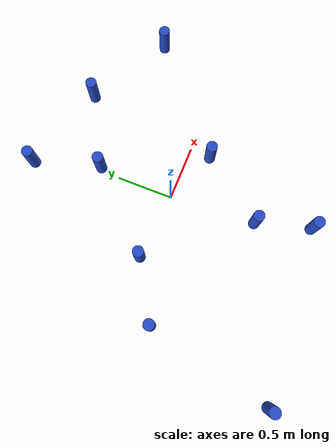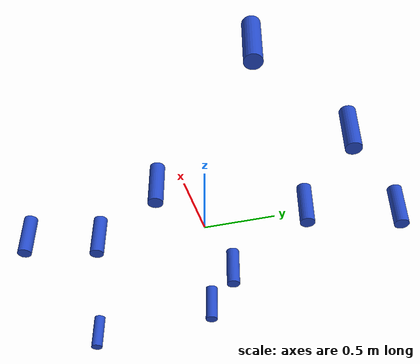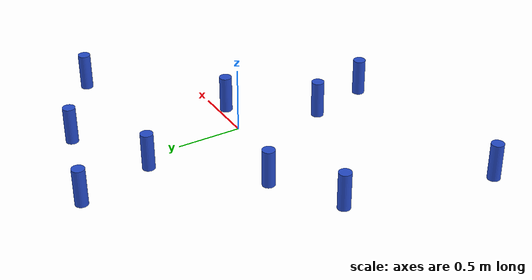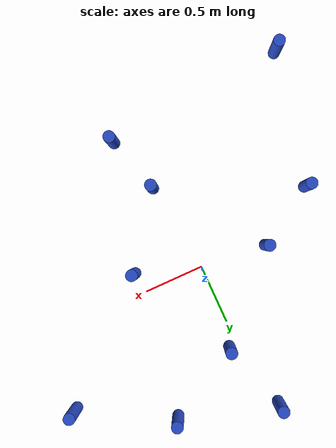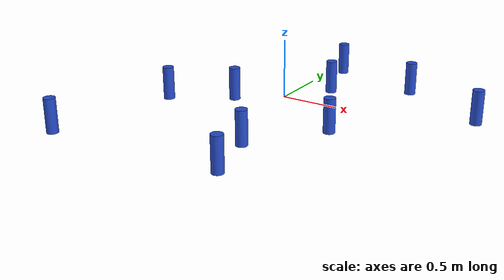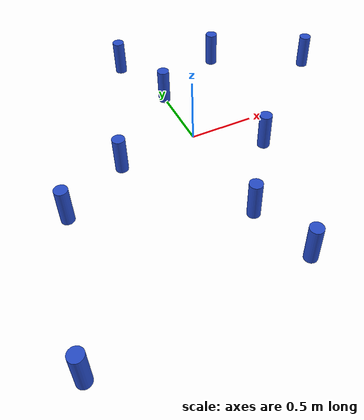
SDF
<?xml version='1.0'?>
<sdf version='1.6'>
  <model name='qmp_maze_model'>
    <link name='link_1'>
      <inertial>
        <mass>0.5</mass>
        <inertia>
          <ixx>0.0040625</ixx>
          <ixy>0</ixy>
          <ixz>0</ixz>
          <iyy>0.0040625</iyy>
          <iyz>0</iyz>
          <izz>0.000625</izz>
        </inertia>
        <pose frame=''>0 0 0 0 -0 0</pose>
      </inertial>
      <pose frame=''>-0.574701 0.06848 0 0 -0 0</pose>
      <gravity>1</gravity>
      <self_collide>0</self_collide>
      <kinematic>0</kinematic>
      <enable_wind>0</enable_wind>
      <visual name='visual'>
        <pose frame=''>0 0 0 0 -0 0</pose>
        <geometry>
          <cylinder>
            <radius>0.05</radius>
            <length>0.3</length>
          </cylinder>
        </geometry>
        <material>
          <lighting>1</lighting>
          <script>
            <uri>file://media/materials/scripts/gazebo.material</uri>
            <name>Gazebo/Blue</name>
          </script>
          <shader type='vertex'>
            <normal_map>__default__</normal_map>
          </shader>
          <ambient>0.3 0.3 0.3 1</ambient>
          <diffuse>0.7 0.7 0.7 1</diffuse>
          <specular>0.01 0.01 0.01 1</specular>
          <emissive>0 0 0 1</emissive>
        </material>
        <transparency>0</transparency>
        <cast_shadows>1</cast_shadows>
      </visual>
      <collision name='collision'>
        <laser_retro>0</laser_retro>
        <max_contacts>10</max_contacts>
        <pose frame=''>0 0 0 0 -0 0</pose>
        <geometry>
          <cylinder>
            <radius>0.05</radius>
            <length>0.3</length>
          </cylinder>
        </geometry>
        <surface>
          <friction>
            <ode>
              <mu>1</mu>
              <mu2>1</mu2>
              <fdir1>0 0 0</fdir1>
              <slip1>0</slip1>
              <slip2>0</slip2>
            </ode>
            <torsional>
              <coefficient>1</coefficient>
              <patch_radius>0</patch_radius>
              <surface_radius>0</surface_radius>
              <use_patch_radius>1</use_patch_radius>
              <ode>
                <slip>0</slip>
              </ode>
            </torsional>
          </friction>
          <bounce>
            <restitution_coefficient>0</restitution_coefficient>
            <threshold>1e+06</threshold>
          </bounce>
          <contact>
            <collide_without_contact>0</collide_without_contact>
            <collide_without_contact_bitmask>1</collide_without_contact_bitmask>
            <collide_bitmask>1</collide_bitmask>
            <ode>
              <soft_cfm>0</soft_cfm>
              <soft_erp>0.2</soft_erp>
              <kp>1e+13</kp>
              <kd>1</kd>
              <max_vel>0.01</max_vel>
              <min_depth>0</min_depth>
            </ode>
            <bullet>
              <split_impulse>1</split_impulse>
              <split_impulse_penetration_threshold>-0.01</split_impulse_penetration_threshold>
              <soft_cfm>0</soft_cfm>
              <soft_erp>0.2</soft_erp>
              <kp>1e+13</kp>
              <kd>1</kd>
            </bullet>
          </contact>
        </surface>
      </collision>
    </link>
    <link name='link_1_clone'>
      <inertial>
        <mass>0.5</mass>
        <inertia>
          <ixx>0.0040625</ixx>
          <ixy>0</ixy>
          <ixz>0</ixz>
          <iyy>0.0040625</iyy>
          <iyz>0</iyz>
          <izz>0.000625</izz>
        </inertia>
        <pose frame=''>0 0 0 0 -0 0</pose>
      </inertial>
      <pose frame=''>-0.111304 1.32966 0 0 -0 0</pose>
      <gravity>1</gravity>
      <self_collide>0</self_collide>
      <kinematic>0</kinematic>
      <enable_wind>0</enable_wind>
      <visual name='visual'>
        <pose frame=''>0 0 0 0 -0 0</pose>
        <geometry>
          <cylinder>
            <radius>0.05</radius>
            <length>0.3</length>
          </cylinder>
        </geometry>
        <material>
          <lighting>1</lighting>
          <script>
            <uri>file://media/materials/scripts/gazebo.material</uri>
            <name>Gazebo/Blue</name>
          </script>
          <shader type='vertex'>
            <normal_map>__default__</normal_map>
          </shader>
          <ambient>0.3 0.3 0.3 1</ambient>
          <diffuse>0.7 0.7 0.7 1</diffuse>
          <specular>0.01 0.01 0.01 1</specular>
          <emissive>0 0 0 1</emissive>
        </material>
        <transparency>0</transparency>
        <cast_shadows>1</cast_shadows>
      </visual>
      <collision name='collision'>
        <laser_retro>0</laser_retro>
        <max_contacts>10</max_contacts>
        <pose frame=''>0 0 0 0 -0 0</pose>
        <geometry>
          <cylinder>
            <radius>0.05</radius>
            <length>0.3</length>
          </cylinder>
        </geometry>
        <surface>
          <friction>
            <ode>
              <mu>1</mu>
              <mu2>1</mu2>
              <fdir1>0 0 0</fdir1>
              <slip1>0</slip1>
              <slip2>0</slip2>
            </ode>
            <torsional>
              <coefficient>1</coefficient>
              <patch_radius>0</patch_radius>
              <surface_radius>0</surface_radius>
              <use_patch_radius>1</use_patch_radius>
              <ode>
                <slip>0</slip>
              </ode>
            </torsional>
          </friction>
          <bounce>
            <restitution_coefficient>0</restitution_coefficient>
            <threshold>1e+06</threshold>
          </bounce>
          <contact>
            <collide_without_contact>0</collide_without_contact>
            <collide_without_contact_bitmask>1</collide_without_contact_bitmask>
            <collide_bitmask>1</collide_bitmask>
            <ode>
              <soft_cfm>0</soft_cfm>
              <soft_erp>0.2</soft_erp>
              <kp>1e+13</kp>
              <kd>1</kd>
              <max_vel>0.01</max_vel>
              <min_depth>0</min_depth>
            </ode>
            <bullet>
              <split_impulse>1</split_impulse>
              <split_impulse_penetration_threshold>-0.01</split_impulse_penetration_threshold>
              <soft_cfm>0</soft_cfm>
              <soft_erp>0.2</soft_erp>
              <kp>1e+13</kp>
              <kd>1</kd>
            </bullet>
          </contact>
        </surface>
      </collision>
    </link>
    <link name='link_1_clone_0'>
      <inertial>
        <mass>0.5</mass>
        <inertia>
          <ixx>0.0040625</ixx>
          <ixy>0</ixy>
          <ixz>0</ixz>
          <iyy>0.0040625</iyy>
          <iyz>0</iyz>
          <izz>0.000625</izz>
        </inertia>
        <pose frame=''>0 0 0 0 -0 0</pose>
      </inertial>
      <pose frame=''>0.069563 0.727162 0 0 -0 0</pose>
      <gravity>1</gravity>
      <self_collide>0</self_collide>
      <kinematic>0</kinematic>
      <enable_wind>0</enable_wind>
      <visual name='visual'>
        <pose frame=''>0 0 0 0 -0 0</pose>
        <geometry>
          <cylinder>
            <radius>0.05</radius>
            <length>0.3</length>
          </cylinder>
        </geometry>
        <material>
          <lighting>1</lighting>
          <script>
            <uri>file://media/materials/scripts/gazebo.material</uri>
            <name>Gazebo/Blue</name>
          </script>
          <shader type='vertex'>
            <normal_map>__default__</normal_map>
          </shader>
          <ambient>0.3 0.3 0.3 1</ambient>
          <diffuse>0.7 0.7 0.7 1</diffuse>
          <specular>0.01 0.01 0.01 1</specular>
          <emissive>0 0 0 1</emissive>
        </material>
        <transparency>0</transparency>
        <cast_shadows>1</cast_shadows>
      </visual>
      <collision name='collision'>
        <laser_retro>0</laser_retro>
        <max_contacts>10</max_contacts>
        <pose frame=''>0 0 0 0 -0 0</pose>
        <geometry>
          <cylinder>
            <radius>0.05</radius>
            <length>0.3</length>
          </cylinder>
        </geometry>
        <surface>
          <friction>
            <ode>
              <mu>1</mu>
              <mu2>1</mu2>
              <fdir1>0 0 0</fdir1>
              <slip1>0</slip1>
              <slip2>0</slip2>
            </ode>
            <torsional>
              <coefficient>1</coefficient>
              <patch_radius>0</patch_radius>
              <surface_radius>0</surface_radius>
              <use_patch_radius>1</use_patch_radius>
              <ode>
                <slip>0</slip>
              </ode>
            </torsional>
          </friction>
          <bounce>
            <restitution_coefficient>0</restitution_coefficient>
            <threshold>1e+06</threshold>
          </bounce>
          <contact>
            <collide_without_contact>0</collide_without_contact>
            <collide_without_contact_bitmask>1</collide_without_contact_bitmask>
            <collide_bitmask>1</collide_bitmask>
            <ode>
              <soft_cfm>0</soft_cfm>
              <soft_erp>0.2</soft_erp>
              <kp>1e+13</kp>
              <kd>1</kd>
              <max_vel>0.01</max_vel>
              <min_depth>0</min_depth>
            </ode>
            <bullet>
              <split_impulse>1</split_impulse>
              <split_impulse_penetration_threshold>-0.01</split_impulse_penetration_threshold>
              <soft_cfm>0</soft_cfm>
              <soft_erp>0.2</soft_erp>
              <kp>1e+13</kp>
              <kd>1</kd>
            </bullet>
          </contact>
        </surface>
      </collision>
    </link>
    <link name='link_1_clone_1'>
      <inertial>
        <mass>0.5</mass>
        <inertia>
          <ixx>0.0040625</ixx>
          <ixy>0</ixy>
          <ixz>0</ixz>
          <iyy>0.0040625</iyy>
          <iyz>0</iyz>
          <izz>0.000625</izz>
        </inertia>
        <pose frame=''>0 0 0 0 -0 0</pose>
      </inertial>
      <pose frame=''>0.232469 -1.26919 0 0 -0 0</pose>
      <gravity>1</gravity>
      <self_collide>0</self_collide>
      <kinematic>0</kinematic>
      <enable_wind>0</enable_wind>
      <visual name='visual'>
        <pose frame=''>0 0 0 0 -0 0</pose>
        <geometry>
          <cylinder>
            <radius>0.05</radius>
            <length>0.3</length>
          </cylinder>
        </geometry>
        <material>
          <lighting>1</lighting>
          <script>
            <uri>file://media/materials/scripts/gazebo.material</uri>
            <name>Gazebo/Blue</name>
          </script>
          <shader type='vertex'>
            <normal_map>__default__</normal_map>
          </shader>
          <ambient>0.3 0.3 0.3 1</ambient>
          <diffuse>0.7 0.7 0.7 1</diffuse>
          <specular>0.01 0.01 0.01 1</specular>
          <emissive>0 0 0 1</emissive>
        </material>
        <transparency>0</transparency>
        <cast_shadows>1</cast_shadows>
      </visual>
      <collision name='collision'>
        <laser_retro>0</laser_retro>
        <max_contacts>10</max_contacts>
        <pose frame=''>0 0 0 0 -0 0</pose>
        <geometry>
          <cylinder>
            <radius>0.05</radius>
            <length>0.3</length>
          </cylinder>
        </geometry>
        <surface>
          <friction>
            <ode>
              <mu>1</mu>
              <mu2>1</mu2>
              <fdir1>0 0 0</fdir1>
              <slip1>0</slip1>
              <slip2>0</slip2>
            </ode>
            <torsional>
              <coefficient>1</coefficient>
              <patch_radius>0</patch_radius>
              <surface_radius>0</surface_radius>
              <use_patch_radius>1</use_patch_radius>
              <ode>
                <slip>0</slip>
              </ode>
            </torsional>
          </friction>
          <bounce>
            <restitution_coefficient>0</restitution_coefficient>
            <threshold>1e+06</threshold>
          </bounce>
          <contact>
            <collide_without_contact>0</collide_without_contact>
            <collide_without_contact_bitmask>1</collide_without_contact_bitmask>
            <collide_bitmask>1</collide_bitmask>
            <ode>
              <soft_cfm>0</soft_cfm>
              <soft_erp>0.2</soft_erp>
              <kp>1e+13</kp>
              <kd>1</kd>
              <max_vel>0.01</max_vel>
              <min_depth>0</min_depth>
            </ode>
            <bullet>
              <split_impulse>1</split_impulse>
              <split_impulse_penetration_threshold>-0.01</split_impulse_penetration_threshold>
              <soft_cfm>0</soft_cfm>
              <soft_erp>0.2</soft_erp>
              <kp>1e+13</kp>
              <kd>1</kd>
            </bullet>
          </contact>
        </surface>
      </collision>
    </link>
    <link name='link_1_clone_2'>
      <inertial>
        <mass>0.5</mass>
        <inertia>
          <ixx>0.0040625</ixx>
          <ixy>0</ixy>
          <ixz>0</ixz>
          <iyy>0.0040625</iyy>
          <iyz>0</iyz>
          <izz>0.000625</izz>
        </inertia>
        <pose frame=''>0 0 0 0 -0 0</pose>
      </inertial>
      <pose frame=''>0.09288 -0.774524 0 0 -0 0</pose>
      <gravity>1</gravity>
      <self_collide>0</self_collide>
      <kinematic>0</kinematic>
      <enable_wind>0</enable_wind>
      <visual name='visual'>
        <pose frame=''>0 0 0 0 -0 0</pose>
        <geometry>
          <cylinder>
            <radius>0.05</radius>
            <length>0.3</length>
          </cylinder>
        </geometry>
        <material>
          <lighting>1</lighting>
          <script>
            <uri>file://media/materials/scripts/gazebo.material</uri>
            <name>Gazebo/Blue</name>
          </script>
          <shader type='vertex'>
            <normal_map>__default__</normal_map>
          </shader>
          <ambient>0.3 0.3 0.3 1</ambient>
          <diffuse>0.7 0.7 0.7 1</diffuse>
          <specular>0.01 0.01 0.01 1</specular>
          <emissive>0 0 0 1</emissive>
        </material>
        <transparency>0</transparency>
        <cast_shadows>1</cast_shadows>
      </visual>
      <collision name='collision'>
        <laser_retro>0</laser_retro>
        <max_contacts>10</max_contacts>
        <pose frame=''>0 0 0 0 -0 0</pose>
        <geometry>
          <cylinder>
            <radius>0.05</radius>
            <length>0.3</length>
          </cylinder>
        </geometry>
        <surface>
          <friction>
            <ode>
              <mu>1</mu>
              <mu2>1</mu2>
              <fdir1>0 0 0</fdir1>
              <slip1>0</slip1>
              <slip2>0</slip2>
            </ode>
            <torsional>
              <coefficient>1</coefficient>
              <patch_radius>0</patch_radius>
              <surface_radius>0</surface_radius>
              <use_patch_radius>1</use_patch_radius>
              <ode>
                <slip>0</slip>
              </ode>
            </torsional>
          </friction>
          <bounce>
            <restitution_coefficient>0</restitution_coefficient>
            <threshold>1e+06</threshold>
          </bounce>
          <contact>
            <collide_without_contact>0</collide_without_contact>
            <collide_without_contact_bitmask>1</collide_without_contact_bitmask>
            <collide_bitmask>1</collide_bitmask>
            <ode>
              <soft_cfm>0</soft_cfm>
              <soft_erp>0.2</soft_erp>
              <kp>1e+13</kp>
              <kd>1</kd>
              <max_vel>0.01</max_vel>
              <min_depth>0</min_depth>
            </ode>
            <bullet>
              <split_impulse>1</split_impulse>
              <split_impulse_penetration_threshold>-0.01</split_impulse_penetration_threshold>
              <soft_cfm>0</soft_cfm>
              <soft_erp>0.2</soft_erp>
              <kp>1e+13</kp>
              <kd>1</kd>
            </bullet>
          </contact>
        </surface>
      </collision>
    </link>
    <link name='link_1_clone_3'>
      <inertial>
        <mass>0.5</mass>
        <inertia>
          <ixx>0.0040625</ixx>
          <ixy>0</ixy>
          <ixz>0</ixz>
          <iyy>0.0040625</iyy>
          <iyz>0</iyz>
          <izz>0.000625</izz>
        </inertia>
        <pose frame=''>0 0 0 0 -0 0</pose>
      </inertial>
      <pose frame=''>0.536779 -0.178349 0 0 -0 0</pose>
      <gravity>1</gravity>
      <self_collide>0</self_collide>
      <kinematic>0</kinematic>
      <enable_wind>0</enable_wind>
      <visual name='visual'>
        <pose frame=''>0 0 0 0 -0 0</pose>
        <geometry>
          <cylinder>
            <radius>0.05</radius>
            <length>0.3</length>
          </cylinder>
        </geometry>
        <material>
          <lighting>1</lighting>
          <script>
            <uri>file://media/materials/scripts/gazebo.material</uri>
            <name>Gazebo/Blue</name>
          </script>
          <shader type='vertex'>
            <normal_map>__default__</normal_map>
          </shader>
          <ambient>0.3 0.3 0.3 1</ambient>
          <diffuse>0.7 0.7 0.7 1</diffuse>
          <specular>0.01 0.01 0.01 1</specular>
          <emissive>0 0 0 1</emissive>
        </material>
        <transparency>0</transparency>
        <cast_shadows>1</cast_shadows>
      </visual>
      <collision name='collision'>
        <laser_retro>0</laser_retro>
        <max_contacts>10</max_contacts>
        <pose frame=''>0 0 0 0 -0 0</pose>
        <geometry>
          <cylinder>
            <radius>0.05</radius>
            <length>0.3</length>
          </cylinder>
        </geometry>
        <surface>
          <friction>
            <ode>
              <mu>1</mu>
              <mu2>1</mu2>
              <fdir1>0 0 0</fdir1>
              <slip1>0</slip1>
              <slip2>0</slip2>
            </ode>
            <torsional>
              <coefficient>1</coefficient>
              <patch_radius>0</patch_radius>
              <surface_radius>0</surface_radius>
              <use_patch_radius>1</use_patch_radius>
              <ode>
                <slip>0</slip>
              </ode>
            </torsional>
          </friction>
          <bounce>
            <restitution_coefficient>0</restitution_coefficient>
            <threshold>1e+06</threshold>
          </bounce>
          <contact>
            <collide_without_contact>0</collide_without_contact>
            <collide_without_contact_bitmask>1</collide_without_contact_bitmask>
            <collide_bitmask>1</collide_bitmask>
            <ode>
              <soft_cfm>0</soft_cfm>
              <soft_erp>0.2</soft_erp>
              <kp>1e+13</kp>
              <kd>1</kd>
              <max_vel>0.01</max_vel>
              <min_depth>0</min_depth>
            </ode>
            <bullet>
              <split_impulse>1</split_impulse>
              <split_impulse_penetration_threshold>-0.01</split_impulse_penetration_threshold>
              <soft_cfm>0</soft_cfm>
              <soft_erp>0.2</soft_erp>
              <kp>1e+13</kp>
              <kd>1</kd>
            </bullet>
          </contact>
        </surface>
      </collision>
    </link>
    <link name='link_1_clone_4'>
      <inertial>
        <mass>0.5</mass>
        <inertia>
          <ixx>0.0040625</ixx>
          <ixy>0</ixy>
          <ixz>0</ixz>
          <iyy>0.0040625</iyy>
          <iyz>0</iyz>
          <izz>0.000625</izz>
        </inertia>
        <pose frame=''>0 0 0 0 -0 0</pose>
      </inertial>
      <pose frame=''>-1.09192 -0.242995 0 0 -0 0</pose>
      <gravity>1</gravity>
      <self_collide>0</self_collide>
      <kinematic>0</kinematic>
      <enable_wind>0</enable_wind>
      <visual name='visual'>
        <pose frame=''>0 0 0 0 -0 0</pose>
        <geometry>
          <cylinder>
            <radius>0.05</radius>
            <length>0.3</length>
          </cylinder>
        </geometry>
        <material>
          <lighting>1</lighting>
          <script>
            <uri>file://media/materials/scripts/gazebo.material</uri>
            <name>Gazebo/Blue</name>
          </script>
          <shader type='vertex'>
            <normal_map>__default__</normal_map>
          </shader>
          <ambient>0.3 0.3 0.3 1</ambient>
          <diffuse>0.7 0.7 0.7 1</diffuse>
          <specular>0.01 0.01 0.01 1</specular>
          <emissive>0 0 0 1</emissive>
        </material>
        <transparency>0</transparency>
        <cast_shadows>1</cast_shadows>
      </visual>
      <collision name='collision'>
        <laser_retro>0</laser_retro>
        <max_contacts>10</max_contacts>
        <pose frame=''>0 0 0 0 -0 0</pose>
        <geometry>
          <cylinder>
            <radius>0.05</radius>
            <length>0.3</length>
          </cylinder>
        </geometry>
        <surface>
          <friction>
            <ode>
              <mu>1</mu>
              <mu2>1</mu2>
              <fdir1>0 0 0</fdir1>
              <slip1>0</slip1>
              <slip2>0</slip2>
            </ode>
            <torsional>
              <coefficient>1</coefficient>
              <patch_radius>0</patch_radius>
              <surface_radius>0</surface_radius>
              <use_patch_radius>1</use_patch_radius>
              <ode>
                <slip>0</slip>
              </ode>
            </torsional>
          </friction>
          <bounce>
            <restitution_coefficient>0</restitution_coefficient>
            <threshold>1e+06</threshold>
          </bounce>
          <contact>
            <collide_without_contact>0</collide_without_contact>
            <collide_without_contact_bitmask>1</collide_without_contact_bitmask>
            <collide_bitmask>1</collide_bitmask>
            <ode>
              <soft_cfm>0</soft_cfm>
              <soft_erp>0.2</soft_erp>
              <kp>1e+13</kp>
              <kd>1</kd>
              <max_vel>0.01</max_vel>
              <min_depth>0</min_depth>
            </ode>
            <bullet>
              <split_impulse>1</split_impulse>
              <split_impulse_penetration_threshold>-0.01</split_impulse_penetration_threshold>
              <soft_cfm>0</soft_cfm>
              <soft_erp>0.2</soft_erp>
              <kp>1e+13</kp>
              <kd>1</kd>
            </bullet>
          </contact>
        </surface>
      </collision>
    </link>
    <link name='link_1_clone_5'>
      <inertial>
        <mass>0.5</mass>
        <inertia>
          <ixx>0.0040625</ixx>
          <ixy>0</ixy>
          <ixz>0</ixz>
          <iyy>0.0040625</iyy>
          <iyz>0</iyz>
          <izz>0.000625</izz>
        </inertia>
        <pose frame=''>0 0 0 0 -0 0</pose>
      </inertial>
      <pose frame=''>0.714254 1.08117 0 0 -0 0</pose>
      <gravity>1</gravity>
      <self_collide>0</self_collide>
      <kinematic>0</kinematic>
      <enable_wind>0</enable_wind>
      <visual name='visual'>
        <pose frame=''>0 0 0 0 -0 0</pose>
        <geometry>
          <cylinder>
            <radius>0.05</radius>
            <length>0.3</length>
          </cylinder>
        </geometry>
        <material>
          <lighting>1</lighting>
          <script>
            <uri>file://media/materials/scripts/gazebo.material</uri>
            <name>Gazebo/Blue</name>
          </script>
          <shader type='vertex'>
            <normal_map>__default__</normal_map>
          </shader>
          <ambient>0.3 0.3 0.3 1</ambient>
          <diffuse>0.7 0.7 0.7 1</diffuse>
          <specular>0.01 0.01 0.01 1</specular>
          <emissive>0 0 0 1</emissive>
        </material>
        <transparency>0</transparency>
        <cast_shadows>1</cast_shadows>
      </visual>
      <collision name='collision'>
        <laser_retro>0</laser_retro>
        <max_contacts>10</max_contacts>
        <pose frame=''>0 0 0 0 -0 0</pose>
        <geometry>
          <cylinder>
            <radius>0.05</radius>
            <length>0.3</length>
          </cylinder>
        </geometry>
        <surface>
          <friction>
            <ode>
              <mu>1</mu>
              <mu2>1</mu2>
              <fdir1>0 0 0</fdir1>
              <slip1>0</slip1>
              <slip2>0</slip2>
            </ode>
            <torsional>
              <coefficient>1</coefficient>
              <patch_radius>0</patch_radius>
              <surface_radius>0</surface_radius>
              <use_patch_radius>1</use_patch_radius>
              <ode>
                <slip>0</slip>
              </ode>
            </torsional>
          </friction>
          <bounce>
            <restitution_coefficient>0</restitution_coefficient>
            <threshold>1e+06</threshold>
          </bounce>
          <contact>
            <collide_without_contact>0</collide_without_contact>
            <collide_without_contact_bitmask>1</collide_without_contact_bitmask>
            <collide_bitmask>1</collide_bitmask>
            <ode>
              <soft_cfm>0</soft_cfm>
              <soft_erp>0.2</soft_erp>
              <kp>1e+13</kp>
              <kd>1</kd>
              <max_vel>0.01</max_vel>
              <min_depth>0</min_depth>
            </ode>
            <bullet>
              <split_impulse>1</split_impulse>
              <split_impulse_penetration_threshold>-0.01</split_impulse_penetration_threshold>
              <soft_cfm>0</soft_cfm>
              <soft_erp>0.2</soft_erp>
              <kp>1e+13</kp>
              <kd>1</kd>
            </bullet>
          </contact>
        </surface>
      </collision>
    </link>
    <link name='link_1_clone_6'>
      <inertial>
        <mass>0.5</mass>
        <inertia>
          <ixx>0.0040625</ixx>
          <ixy>0</ixy>
          <ixz>0</ixz>
          <iyy>0.0040625</iyy>
          <iyz>0</iyz>
          <izz>0.000625</izz>
        </inertia>
        <pose frame=''>0 0 0 0 -0 0</pose>
      </inertial>
      <pose frame=''>-1.34087 -1.39675 0 0 -0 0</pose>
      <gravity>1</gravity>
      <self_collide>0</self_collide>
      <kinematic>0</kinematic>
      <enable_wind>0</enable_wind>
      <visual name='visual'>
        <pose frame=''>0 0 0 0 -0 0</pose>
        <geometry>
          <cylinder>
            <radius>0.05</radius>
            <length>0.3</length>
          </cylinder>
        </geometry>
        <material>
          <lighting>1</lighting>
          <script>
            <uri>file://media/materials/scripts/gazebo.material</uri>
            <name>Gazebo/Blue</name>
          </script>
          <shader type='vertex'>
            <normal_map>__default__</normal_map>
          </shader>
          <ambient>0.3 0.3 0.3 1</ambient>
          <diffuse>0.7 0.7 0.7 1</diffuse>
          <specular>0.01 0.01 0.01 1</specular>
          <emissive>0 0 0 1</emissive>
        </material>
        <transparency>0</transparency>
        <cast_shadows>1</cast_shadows>
      </visual>
      <collision name='collision'>
        <laser_retro>0</laser_retro>
        <max_contacts>10</max_contacts>
        <pose frame=''>0 0 0 0 -0 0</pose>
        <geometry>
          <cylinder>
            <radius>0.05</radius>
            <length>0.3</length>
          </cylinder>
        </geometry>
        <surface>
          <friction>
            <ode>
              <mu>1</mu>
              <mu2>1</mu2>
              <fdir1>0 0 0</fdir1>
              <slip1>0</slip1>
              <slip2>0</slip2>
            </ode>
            <torsional>
              <coefficient>1</coefficient>
              <patch_radius>0</patch_radius>
              <surface_radius>0</surface_radius>
              <use_patch_radius>1</use_patch_radius>
              <ode>
                <slip>0</slip>
              </ode>
            </torsional>
          </friction>
          <bounce>
            <restitution_coefficient>0</restitution_coefficient>
            <threshold>1e+06</threshold>
          </bounce>
          <contact>
            <collide_without_contact>0</collide_without_contact>
            <collide_without_contact_bitmask>1</collide_without_contact_bitmask>
            <collide_bitmask>1</collide_bitmask>
            <ode>
              <soft_cfm>0</soft_cfm>
              <soft_erp>0.2</soft_erp>
              <kp>1e+13</kp>
              <kd>1</kd>
              <max_vel>0.01</max_vel>
              <min_depth>0</min_depth>
            </ode>
            <bullet>
              <split_impulse>1</split_impulse>
              <split_impulse_penetration_threshold>-0.01</split_impulse_penetration_threshold>
              <soft_cfm>0</soft_cfm>
              <soft_erp>0.2</soft_erp>
              <kp>1e+13</kp>
              <kd>1</kd>
            </bullet>
          </contact>
        </surface>
      </collision>
    </link>
    <link name='link_1_clone_7'>
      <inertial>
        <mass>0.5</mass>
        <inertia>
          <ixx>0.0040625</ixx>
          <ixy>0</ixy>
          <ixz>0</ixz>
          <iyy>0.0040625</iyy>
          <iyz>0</iyz>
          <izz>0.000625</izz>
        </inertia>
        <pose frame=''>0 0 0 0 -0 0</pose>
      </inertial>
      <pose frame=''>1.47285 0.655336 0 0 -0 0</pose>
      <gravity>1</gravity>
      <self_collide>0</self_collide>
      <kinematic>0</kinematic>
      <enable_wind>0</enable_wind>
      <visual name='visual'>
        <pose frame=''>0 0 0 0 -0 0</pose>
        <geometry>
          <cylinder>
            <radius>0.05</radius>
            <length>0.3</length>
          </cylinder>
        </geometry>
        <material>
          <lighting>1</lighting>
          <script>
            <uri>file://media/materials/scripts/gazebo.material</uri>
            <name>Gazebo/Blue</name>
          </script>
          <shader type='vertex'>
            <normal_map>__default__</normal_map>
          </shader>
          <ambient>0.3 0.3 0.3 1</ambient>
          <diffuse>0.7 0.7 0.7 1</diffuse>
          <specular>0.01 0.01 0.01 1</specular>
          <emissive>0 0 0 1</emissive>
        </material>
        <transparency>0</transparency>
        <cast_shadows>1</cast_shadows>
      </visual>
      <collision name='collision'>
        <laser_retro>0</laser_retro>
        <max_contacts>10</max_contacts>
        <pose frame=''>0 0 0 0 -0 0</pose>
        <geometry>
          <cylinder>
            <radius>0.05</radius>
            <length>0.3</length>
          </cylinder>
        </geometry>
        <surface>
          <friction>
            <ode>
              <mu>1</mu>
              <mu2>1</mu2>
              <fdir1>0 0 0</fdir1>
              <slip1>0</slip1>
              <slip2>0</slip2>
            </ode>
            <torsional>
              <coefficient>1</coefficient>
              <patch_radius>0</patch_radius>
              <surface_radius>0</surface_radius>
              <use_patch_radius>1</use_patch_radius>
              <ode>
                <slip>0</slip>
              </ode>
            </torsional>
          </friction>
          <bounce>
            <restitution_coefficient>0</restitution_coefficient>
            <threshold>1e+06</threshold>
          </bounce>
          <contact>
            <collide_without_contact>0</collide_without_contact>
            <collide_without_contact_bitmask>1</collide_without_contact_bitmask>
            <collide_bitmask>1</collide_bitmask>
            <ode>
              <soft_cfm>0</soft_cfm>
              <soft_erp>0.2</soft_erp>
              <kp>1e+13</kp>
              <kd>1</kd>
              <max_vel>0.01</max_vel>
              <min_depth>0</min_depth>
            </ode>
            <bullet>
              <split_impulse>1</split_impulse>
              <split_impulse_penetration_threshold>-0.01</split_impulse_penetration_threshold>
              <soft_cfm>0</soft_cfm>
              <soft_erp>0.2</soft_erp>
              <kp>1e+13</kp>
              <kd>1</kd>
            </bullet>
          </contact>
        </surface>
      </collision>
    </link>
    <static>0</static>
    <allow_auto_disable>1</allow_auto_disable>
  </model>
</sdf>
